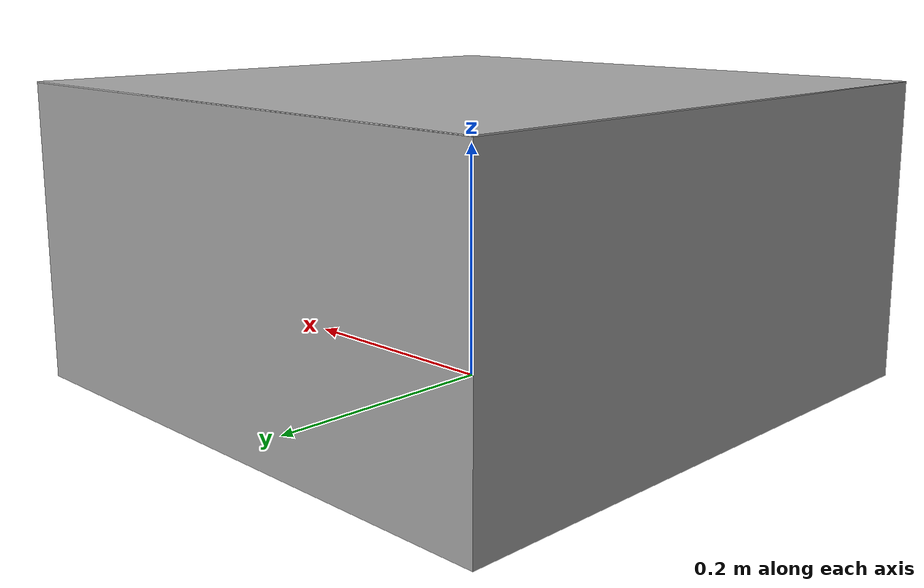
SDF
<?xml version="1.0"?>
<sdf version="1.5">
    <model name="box-25">
        <static>true</static>
        <link name="box-25_link">
            <pose>0.0 0.0 0.125 0 0 0</pose>
            <visual name="visual_box-25">
                <cast_shadows>false</cast_shadows>
                <geometry>
                    <box>
                        <size>0.5 0.5 0.25</size>
                    </box>
                </geometry>
                <material>
                    <script>
                        <uri>file://media/materials/scripts/gazebo.material</uri>
                        <name>Gazebo/Grey</name>
                    </script>
                </material>
            </visual>

            <collision name="collision_box-25">
                <geometry>
                    <box>
                        <size>0.5 0.5 0.25</size>
                    </box>
                </geometry>
            </collision>
        </link>

        <link name="box-25-clever_link">
            <pose>0.0 0.0 0.25 0 0 0</pose>
            <visual name="visual_box-25-clever">
                <cast_shadows>false</cast_shadows>
                <geometry>
                    <box>
                        <size>0.5 0.5 1e-3</size>
                    </box>
                </geometry>
                <material>
                    <script>
                        <uri>model://box-25/materials/scripts</uri>
                        <uri>model://box-25/materials/textures</uri>
                        <name>box25/qr-code</name>
                    </script>
                </material>
            </visual>
        </link>
    </model>
</sdf>
